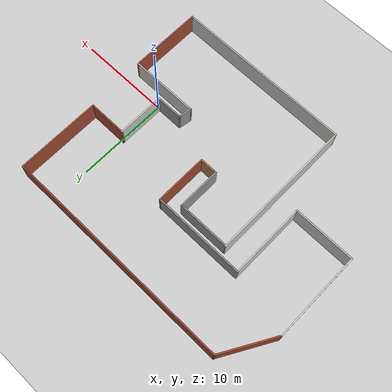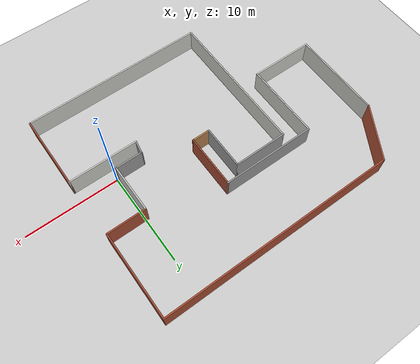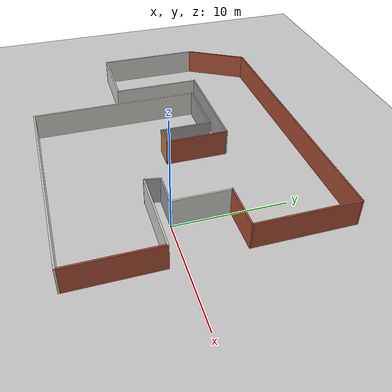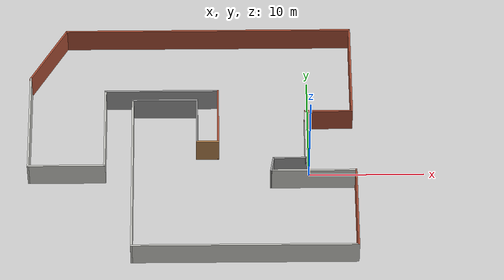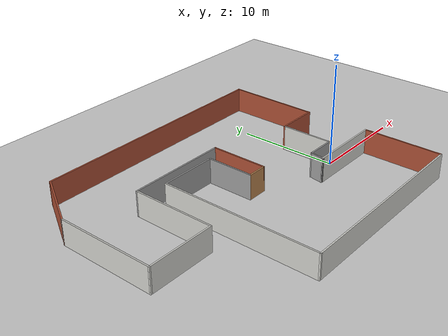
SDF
<sdf version="1.6">
 <world name="default">
  <light name="sun" type="directional">
   <pose>0 0 10 0 -0 0</pose>
   <diffuse>0.8 0.8 0.8 1</diffuse>
   <specular>0.2 0.2 0.2 1</specular>
   <attenuation>
    <range>1000</range>
    <constant>0.9</constant>
    <linear>0.01</linear>
    <quadratic>0.001</quadratic>
   </attenuation>
   <direction>-0.5 0.1 -0.9</direction>
  </light>
  <model name="ground_plane">
   <static>1</static>
   <link name="link">
    <collision name="collision">
     <geometry><plane><normal>0 0 1</normal><size>100 100</size></plane></geometry>
     <surface>
      <contact><collide_bitmask>65535</collide_bitmask></contact>
      <friction><ode><mu>100</mu><mu2>50</mu2></ode></friction>
     </surface>
    </collision>
    <visual name="visual">
     <cast_shadows>0</cast_shadows>
     <geometry><plane><normal>0 0 1</normal><size>100 100</size></plane></geometry>
     <material>
      <script><uri>file://media/materials/scripts/gazebo.material</uri><name>Gazebo/Grey</name></script>
     </material>
    </visual>
   </link>
  </model>
  <gravity>0 0 -9.8</gravity>
  <magnetic_field>6e-06 2.3e-05 -4.2e-05</magnetic_field>
  <atmosphere type="adiabatic"/>
  <physics name="default_physics" default="0" type="ode">
   <max_step_size>0.001</max_step_size>
   <real_time_factor>1</real_time_factor>
   <real_time_update_rate>1000</real_time_update_rate>
  </physics>
  <scene><ambient>0.4 0.4 0.4 1</ambient><background>0.7 0.7 0.7 1</background><shadows>1</shadows></scene>
  <spherical_coordinates>
   <surface_model>EARTH_WGS84</surface_model>
   <latitude_deg>0</latitude_deg>
   <longitude_deg>0</longitude_deg>
   <elevation>0</elevation>
   <heading_deg>0</heading_deg>
  </spherical_coordinates>
  <model name="FirstWorld">
   <pose>-10.1587 2.5751 0 0 -0 0</pose>
   <link name="Wall_0">
    <collision name="Wall_0_Collision">
     <geometry><box><size>7.5 0.15 2.5</size></box></geometry>
     <pose>0 0 1.25 0 -0 0</pose>
    </collision>
    <visual name="Wall_0_Visual">
     <pose>0 0 1.25 0 -0 0</pose>
     <geometry><box><size>7.5 0.15 2.5</size></box></geometry>
     <material>
      <script><uri>file://media/materials/scripts/gazebo.material</uri><name>Gazebo/CeilingTiled</name></script>
      <ambient>1 1 1 1</ambient>
     </material>
     <meta><layer>0</layer></meta>
    </visual>
    <pose>10.5137 -3.8551 0 0 -0 0</pose>
   </link>
   <link name="Wall_1">
    <collision name="Wall_1_Collision">
     <geometry><box><size>8 0.15 2.5</size></box></geometry>
     <pose>0 0 1.25 0 -0 0</pose>
    </collision>
    <visual name="Wall_1_Visual">
     <pose>0 0 1.25 0 -0 0</pose>
     <geometry><box><size>8 0.15 2.5</size></box></geometry>
     <material>
      <script><uri>file://media/materials/scripts/gazebo.material</uri><name>Gazebo/Bricks</name></script>
      <ambient>1 1 1 1</ambient>
     </material>
     <meta><layer>0</layer></meta>
    </visual>
    <pose>14.1887 -7.7801 0 0 -0 -1.5708</pose>
   </link>
   <link name="Wall_10">
    <collision name="Wall_10_Collision">
     <geometry><box><size>6.75 0.15 2.5</size></box></geometry>
     <pose>0 0 1.25 0 -0 0</pose>
    </collision>
    <visual name="Wall_10_Visual">
     <pose>0 0 1.25 0 -0 0</pose>
     <geometry><box><size>6.75 0.15 2.5</size></box></geometry>
     <material>
      <script><uri>file://media/materials/scripts/gazebo.material</uri><name>Gazebo/CeilingTiled</name></script>
      <ambient>1 1 1 1</ambient>
     </material>
     <meta><layer>0</layer></meta>
    </visual>
    <pose>-10.8613 -3.2051 0 0 -0 3.14159</pose>
   </link>
   <link name="Wall_11">
    <collision name="Wall_11_Collision">
     <geometry><box><size>9.75 0.15 2.5</size></box></geometry>
     <pose>0 0 1.25 0 -0 0</pose>
    </collision>
    <visual name="Wall_11_Visual">
     <pose>0 0 1.25 0 -0 0</pose>
     <geometry><box><size>9.75 0.15 2.5</size></box></geometry>
     <material>
      <script><uri>file://media/materials/scripts/gazebo.material</uri><name>Gazebo/CeilingTiled</name></script>
      <ambient>1 1 1 1</ambient>
     </material>
     <meta><layer>0</layer></meta>
    </visual>
    <pose>-14.1613 1.5949 0 0 -0 1.5708</pose>
   </link>
   <link name="Wall_12">
    <collision name="Wall_12_Collision">
     <geometry><box><size>6.25 0.15 2.5</size></box></geometry>
     <pose>0 0 1.25 0 -0 0</pose>
    </collision>
    <visual name="Wall_12_Visual">
     <pose>0 0 1.25 0 -0 0</pose>
     <geometry><box><size>6.25 0.15 2.5</size></box></geometry>
     <material>
      <script><uri>file://media/materials/scripts/gazebo.material</uri><name>Gazebo/Bricks</name></script>
      <ambient>1 1 1 1</ambient>
     </material>
     <meta><layer>0</layer></meta>
    </visual>
    <pose>-12.6363 9.03627 0 0 -0 1.0472</pose>
   </link>
   <link name="Wall_13">
    <collision name="Wall_13_Collision">
     <geometry><box><size>25.25 0.15 2.5</size></box></geometry>
     <pose>0 0 1.25 0 -0 0</pose>
    </collision>
    <visual name="Wall_13_Visual">
     <pose>0 0 1.25 0 -0 0</pose>
     <geometry><box><size>25.25 0.15 2.5</size></box></geometry>
     <material>
      <script><uri>file://media/materials/scripts/gazebo.material</uri><name>Gazebo/Bricks</name></script>
      <ambient>1 1 1 1</ambient>
     </material>
     <meta><layer>0</layer></meta>
    </visual>
    <pose>1.43873 11.6777 0 0 -0 0</pose>
   </link>
   <link name="Wall_14">
    <collision name="Wall_14_Collision">
     <geometry><box><size>9.25 0.15 2.5</size></box></geometry>
     <pose>0 0 1.25 0 -0 0</pose>
    </collision>
    <visual name="Wall_14_Visual">
     <pose>0 0 1.25 0 -0 0</pose>
     <geometry><box><size>9.25 0.15 2.5</size></box></geometry>
     <material>
      <script><uri>file://media/materials/scripts/gazebo.material</uri><name>Gazebo/Bricks</name></script>
      <ambient>1 1 1 1</ambient>
     </material>
     <meta><layer>0</layer></meta>
    </visual>
    <pose>13.9887 7.12765 0 0 -0 -1.5708</pose>
   </link>
   <link name="Wall_15">
    <collision name="Wall_15_Collision">
     <geometry><box><size>4.25 0.15 2.5</size></box></geometry>
     <pose>0 0 1.25 0 -0 0</pose>
    </collision>
    <visual name="Wall_15_Visual">
     <pose>0 0 1.25 0 -0 0</pose>
     <geometry><box><size>4.25 0.15 2.5</size></box></geometry>
     <material>
      <script><uri>file://media/materials/scripts/gazebo.material</uri><name>Gazebo/Bricks</name></script>
      <ambient>1 1 1 1</ambient>
     </material>
     <meta><layer>0</layer></meta>
    </visual>
    <pose>11.9387 2.57765 0 0 -0 3.14159</pose>
   </link>
   <link name="Wall_16">
    <collision name="Wall_16_Collision">
     <geometry><box><size>5.25 0.15 2.5</size></box></geometry>
     <pose>0 0 1.25 0 -0 0</pose>
    </collision>
    <visual name="Wall_16_Visual">
     <pose>0 0 1.25 0 -0 0</pose>
     <geometry><box><size>5.25 0.15 2.5</size></box></geometry>
     <material>
      <script><uri>file://media/materials/scripts/gazebo.material</uri><name>Gazebo/CeilingTiled</name></script>
      <ambient>1 1 1 1</ambient>
     </material>
     <meta><layer>0</layer></meta>
    </visual>
    <pose>9.88873 0.027652 0 0 -0 -1.5708</pose>
   </link>
   <link name="Wall_17">
    <collision name="Wall_17_Collision">
     <geometry><box><size>0.16 0.15 2.5</size></box></geometry>
     <pose>0 0 1.25 0 -0 0</pose>
    </collision>
    <visual name="Wall_17_Visual">
     <pose>0 0 1.25 0 -0 0</pose>
     <geometry><box><size>0.16 0.15 2.5</size></box></geometry>
     <material>
      <script><uri>file://media/materials/scripts/gazebo.material</uri><name>Gazebo/Grey</name></script>
      <ambient>1 1 1 1</ambient>
     </material>
     <meta><layer>0</layer></meta>
    </visual>
    <pose>9.89372 -2.52235 0 0 -0 0</pose>
   </link>
   <link name="Wall_18">
    <collision name="Wall_18_Collision">
     <geometry><box><size>3 0.15 2.5</size></box></geometry>
     <pose>0 0 1.25 0 -0 0</pose>
    </collision>
    <visual name="Wall_18_Visual">
     <pose>0 0 1.25 0 -0 0</pose>
     <geometry><box><size>3 0.15 2.5</size></box></geometry>
     <material>
      <script><uri>file://media/materials/scripts/gazebo.material</uri><name>Gazebo/Grey</name></script>
      <ambient>1 1 1 1</ambient>
     </material>
     <meta><layer>0</layer></meta>
    </visual>
    <pose>8.47372 -2.52235 0 0 -0 3.14159</pose>
   </link>
   <link name="Wall_19">
    <collision name="Wall_19_Collision">
     <geometry><box><size>0.16 0.15 2.5</size></box></geometry>
     <pose>0 0 1.25 0 -0 0</pose>
    </collision>
    <visual name="Wall_19_Visual">
     <pose>0 0 1.25 0 -0 0</pose>
     <geometry><box><size>0.16 0.15 2.5</size></box></geometry>
     <material>
      <script><uri>file://media/materials/scripts/gazebo.material</uri><name>Gazebo/Grey</name></script>
      <ambient>1 1 1 1</ambient>
     </material>
     <meta><layer>0</layer></meta>
    </visual>
    <pose>7.05373 -2.52235 0 0 -0 0</pose>
   </link>
   <link name="Wall_2">
    <collision name="Wall_2_Collision">
     <geometry><box><size>19.5 0.15 2.5</size></box></geometry>
     <pose>0 0 1.25 0 -0 0</pose>
    </collision>
    <visual name="Wall_2_Visual">
     <pose>0 0 1.25 0 -0 0</pose>
     <geometry><box><size>19.5 0.15 2.5</size></box></geometry>
     <material>
      <script><uri>file://media/materials/scripts/gazebo.material</uri><name>Gazebo/CeilingTiled</name></script>
      <ambient>1 1 1 1</ambient>
     </material>
     <meta><layer>0</layer></meta>
    </visual>
    <pose>4.51372 -11.7051 0 0 -0 3.14159</pose>
   </link>
   <link name="Wall_20">
    <collision name="Wall_20_Collision">
     <geometry><box><size>1.50079 0.15 2.5</size></box></geometry>
     <pose>0 0 1.25 0 -0 0</pose>
    </collision>
    <visual name="Wall_20_Visual">
     <pose>0 0 1.25 0 -0 0</pose>
     <geometry><box><size>1.50079 0.15 2.5</size></box></geometry>
     <material>
      <script><uri>file://media/materials/scripts/gazebo.material</uri><name>Gazebo/Grey</name></script>
      <ambient>1 1 1 1</ambient>
     </material>
     <meta><layer>0</layer></meta>
    </visual>
    <pose>6.94872 -3.18873 0 0 -0 -1.73439</pose>
   </link>
   <link name="Wall_3">
    <collision name="Wall_3_Collision">
     <geometry><box><size>15.75 0.15 2.5</size></box></geometry>
     <pose>0 0 1.25 0 -0 0</pose>
    </collision>
    <visual name="Wall_3_Visual">
     <pose>0 0 1.25 0 -0 0</pose>
     <geometry><box><size>15.75 0.15 2.5</size></box></geometry>
     <material>
      <script><uri>file://media/materials/scripts/gazebo.material</uri><name>Gazebo/CeilingTiled</name></script>
      <ambient>1 1 1 1</ambient>
     </material>
     <meta><layer>0</layer></meta>
    </visual>
    <pose>-5.16127 -3.9051 0 0 -0 1.5708</pose>
   </link>
   <link name="Wall_4">
    <collision name="Wall_4_Collision">
     <geometry><box><size>5.75 0.15 2.5</size></box></geometry>
     <pose>0 0 1.25 0 -0 0</pose>
    </collision>
    <visual name="Wall_4_Visual">
     <pose>0 0 1.25 0 -0 0</pose>
     <geometry><box><size>5.75 0.15 2.5</size></box></geometry>
     <material>
      <script><uri>file://media/materials/scripts/gazebo.material</uri><name>Gazebo/Grey</name></script>
      <ambient>1 1 1 1</ambient>
     </material>
     <meta><layer>0</layer></meta>
    </visual>
    <pose>-2.36128 3.8949 0 0 -0 0</pose>
   </link>
   <link name="Wall_5">
    <collision name="Wall_5_Collision">
     <geometry><box><size>4.75 0.15 2.5</size></box></geometry>
     <pose>0 0 1.25 0 -0 0</pose>
    </collision>
    <visual name="Wall_5_Visual">
     <pose>0 0 1.25 0 -0 0</pose>
     <geometry><box><size>4.75 0.15 2.5</size></box></geometry>
     <material>
      <script><uri>file://media/materials/scripts/gazebo.material</uri><name>Gazebo/Grey</name></script>
      <ambient>1 1 1 1</ambient>
     </material>
     <meta><layer>0</layer></meta>
    </visual>
    <pose>0.438725 1.5949 0 0 -0 -1.5708</pose>
   </link>
   <link name="Wall_6">
    <collision name="Wall_6_Collision">
     <geometry><box><size>2 0.15 2.5</size></box></geometry>
     <pose>0 0 1.25 0 -0 0</pose>
    </collision>
    <visual name="Wall_6_Visual">
     <pose>0 0 1.25 0 -0 0</pose>
     <geometry><box><size>2 0.15 2.5</size></box></geometry>
     <material>
      <script><uri>file://media/materials/scripts/gazebo.material</uri><name>Gazebo/Wood</name></script>
      <ambient>1 1 1 1</ambient>
     </material>
     <meta><layer>0</layer></meta>
    </visual>
    <pose>1.36373 -0.705103 0 0 -0 0</pose>
   </link>
   <link name="Wall_7">
    <collision name="Wall_7_Collision">
     <geometry><box><size>5.75 0.15 2.5</size></box></geometry>
     <pose>0 0 1.25 0 -0 0</pose>
    </collision>
    <visual name="Wall_7_Visual">
     <pose>0 0 1.25 0 -0 0</pose>
     <geometry><box><size>5.75 0.15 2.5</size></box></geometry>
     <material>
      <script><uri>file://media/materials/scripts/gazebo.material</uri><name>Gazebo/Bricks</name></script>
      <ambient>1 1 1 1</ambient>
     </material>
     <meta><layer>0</layer></meta>
    </visual>
    <pose>2.28872 2.0949 0 0 -0 1.5708</pose>
   </link>
   <link name="Wall_8">
    <collision name="Wall_8_Collision">
     <geometry><box><size>10 0.15 2.5</size></box></geometry>
     <pose>0 0 1.25 0 -0 0</pose>
    </collision>
    <visual name="Wall_8_Visual">
     <pose>0 0 1.25 0 -0 0</pose>
     <geometry><box><size>10 0.15 2.5</size></box></geometry>
     <material>
      <script><uri>file://media/materials/scripts/gazebo.material</uri><name>Gazebo/Grey</name></script>
      <ambient>1 1 1 1</ambient>
     </material>
     <meta><layer>0</layer></meta>
    </visual>
    <pose>-2.63627 4.8949 0 0 -0 3.14159</pose>
   </link>
   <link name="Wall_9">
    <collision name="Wall_9_Collision">
     <geometry><box><size>8.25 0.15 2.5</size></box></geometry>
     <pose>0 0 1.25 0 -0 0</pose>
    </collision>
    <visual name="Wall_9_Visual">
     <pose>0 0 1.25 0 -0 0</pose>
     <geometry><box><size>8.25 0.15 2.5</size></box></geometry>
     <material>
      <script><uri>file://media/materials/scripts/gazebo.material</uri><name>Gazebo/CeilingTiled</name></script>
      <ambient>1 1 1 1</ambient>
     </material>
     <meta><layer>0</layer></meta>
    </visual>
    <pose>-7.56127 0.844897 0 0 -0 -1.5708</pose>
   </link>
   <static>1</static>
  </model>
 </world>
</sdf>
